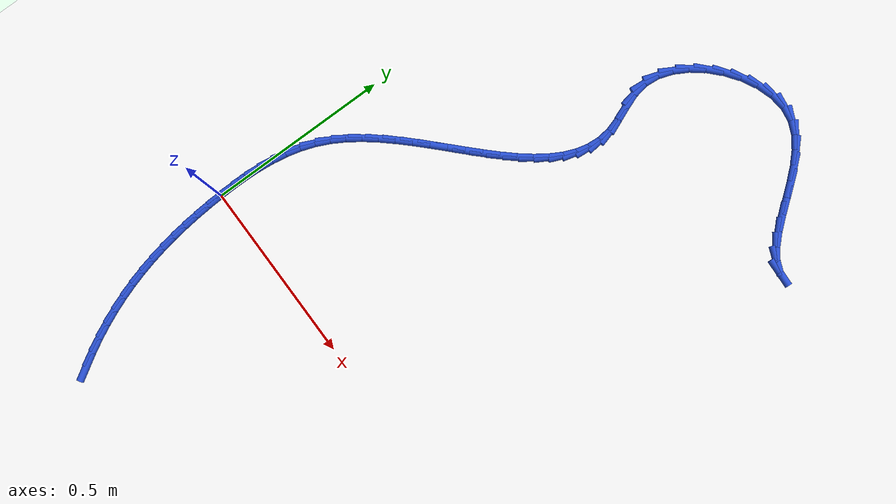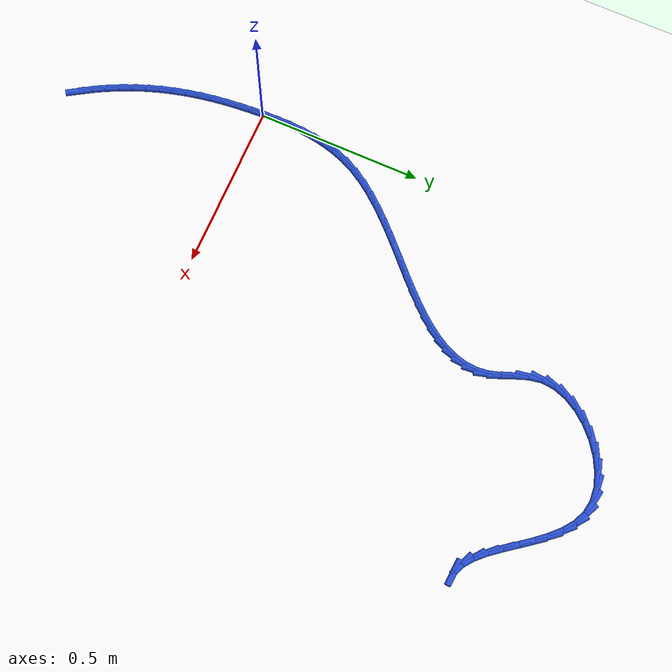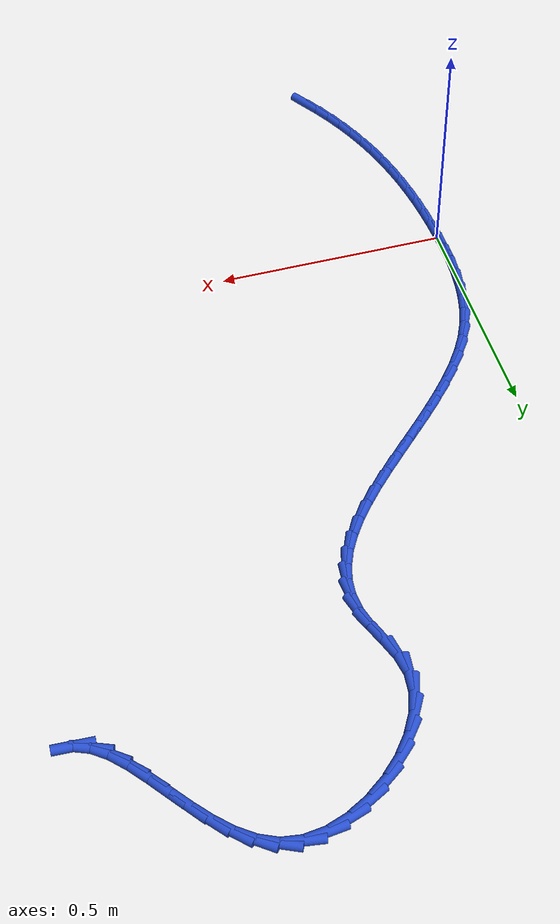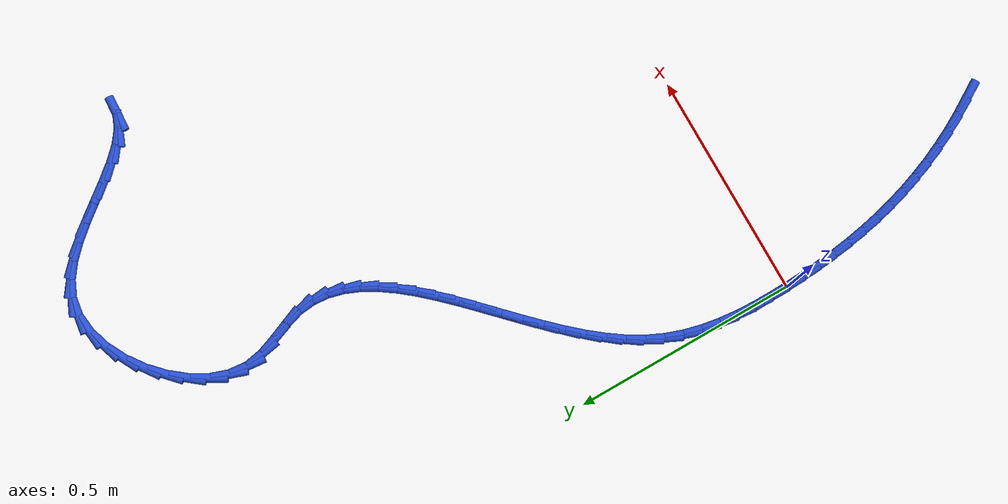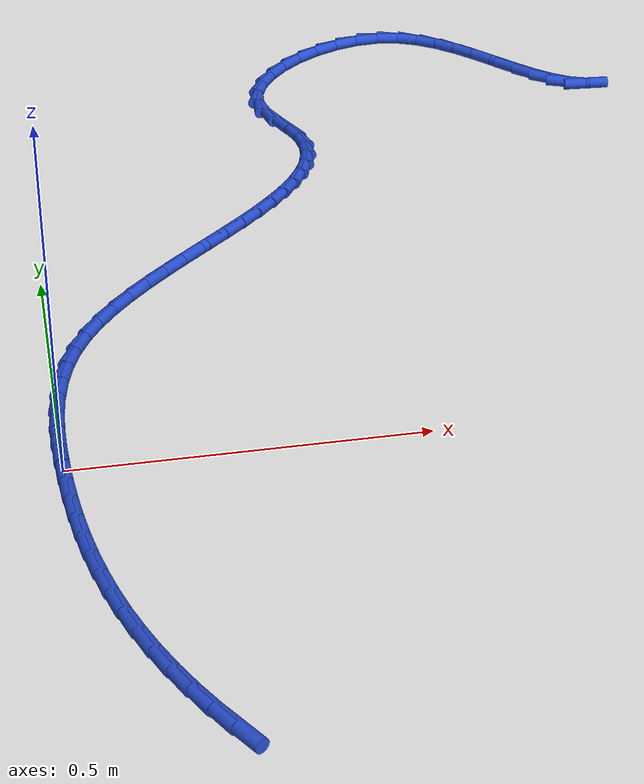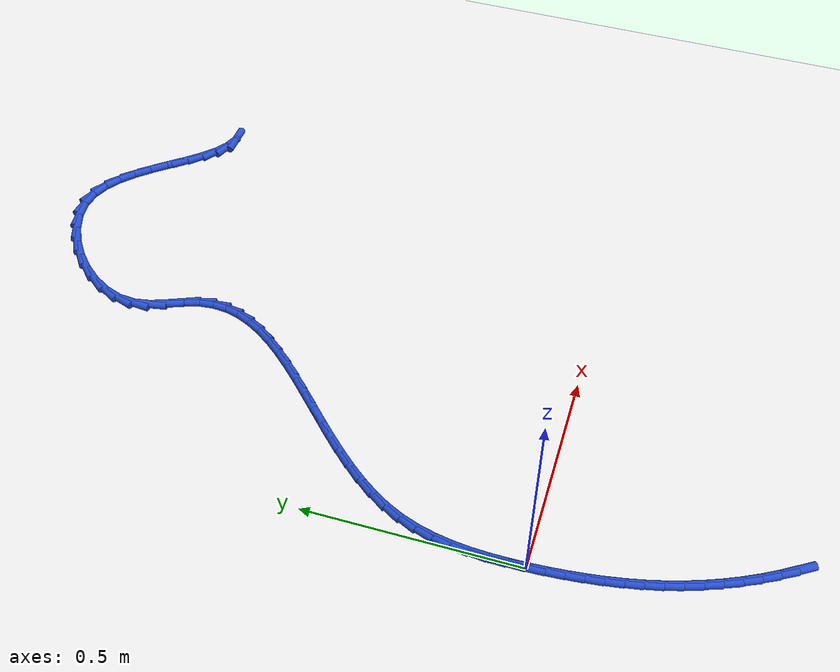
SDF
<sdf version="1.6">
 <world name="default">
  <model name="ground_plane">
   <static>1</static>
   <link name="link">
    <collision name="collision">
     <geometry><plane><normal>0 0 1</normal><size>100 100</size></plane></geometry>
     <surface><friction><ode><mu>100</mu><mu2>50</mu2></ode></friction></surface>
    </collision>
    <visual name="visual">
     <cast_shadows>0</cast_shadows>
     <geometry><plane><normal>0 0 1</normal><size>100 100</size></plane></geometry>
     <material>
      <script><uri>file://media/materials/scripts/gazebo.material</uri><name>Gazebo/WhiteGlow</name></script>
     </material>
    </visual>
   </link>
  </model>
  <model name="line">
   <link name="link_0">
    <pose>5.421010862427522e-18 -2.0816681711721685e-17 0.01 0 1.57 -1.5428339865353886</pose>
    <collision name="collision">
     <geometry><cylinder><radius>0.01</radius><length>0.08</length></cylinder></geometry>
    </collision>
    <visual name="visual">
     <material>
      <script><name>Gazebo/Blue</name><uri>file://media/materials/scripts/gazebo.material</uri></script>
     </material>
     <geometry><cylinder><radius>0.01</radius><length>0.08</length></cylinder></geometry>
    </visual>
   </link>
   <link name="link_1">
    <pose>-0.0011414737055418522 0.040811183048679804 0.01 0 1.57 1.565398914404202</pose>
    <collision name="collision">
     <geometry><cylinder><radius>0.01</radius><length>0.08</length></cylinder></geometry>
    </collision>
    <visual name="visual">
     <material>
      <script><name>Gazebo/Blue</name><uri>file://media/materials/scripts/gazebo.material</uri></script>
     </material>
     <geometry><cylinder><radius>0.01</radius><length>0.08</length></cylinder></geometry>
    </visual>
   </link>
   <link name="link_2">
    <pose>-0.0009211176221651361 0.08163703210619166 0.01 0 1.57 1.5211755405178442</pose>
    <collision name="collision">
     <geometry><cylinder><radius>0.01</radius><length>0.08</length></cylinder></geometry>
    </collision>
    <visual name="visual">
     <material>
      <script><name>Gazebo/Blue</name><uri>file://media/materials/scripts/gazebo.material</uri></script>
     </material>
     <geometry><cylinder><radius>0.01</radius><length>0.08</length></cylinder></geometry>
    </visual>
   </link>
   <link name="link_3">
    <pose>0.0010990882258941938 0.12231650661455905 0.01 0 1.57 1.465713972385653</pose>
    <collision name="collision">
     <geometry><cylinder><radius>0.01</radius><length>0.08</length></cylinder></geometry>
    </collision>
    <visual name="visual">
     <material>
      <script><name>Gazebo/Blue</name><uri>file://media/materials/scripts/gazebo.material</uri></script>
     </material>
     <geometry><cylinder><radius>0.01</radius><length>0.08</length></cylinder></geometry>
    </visual>
   </link>
   <link name="link_4">
    <pose>0.005357163814400184 0.1626885660158054 0.01 0 1.57 1.398746401001696</pose>
    <collision name="collision">
     <geometry><cylinder><radius>0.01</radius><length>0.08</length></cylinder></geometry>
    </collision>
    <visual name="visual">
     <material>
      <script><name>Gazebo/Blue</name><uri>file://media/materials/scripts/gazebo.material</uri></script>
     </material>
     <geometry><cylinder><radius>0.01</radius><length>0.08</length></cylinder></geometry>
    </visual>
   </link>
   <link name="link_5">
    <pose>0.012291129119116874 0.20259216975195415 0.01 0 1.57 1.3203290934087182</pose>
    <collision name="collision">
     <geometry><cylinder><radius>0.01</radius><length>0.08</length></cylinder></geometry>
    </collision>
    <visual name="visual">
     <material>
      <script><name>Gazebo/Blue</name><uri>file://media/materials/scripts/gazebo.material</uri></script>
     </material>
     <geometry><cylinder><radius>0.01</radius><length>0.08</length></cylinder></geometry>
    </visual>
   </link>
   <link name="link_6">
    <pose>0.022339004115808296 0.24186627726502868 0.01 0 1.57 1.2311024524189376</pose>
    <collision name="collision">
     <geometry><cylinder><radius>0.01</radius><length>0.08</length></cylinder></geometry>
    </collision>
    <visual name="visual">
     <material>
      <script><name>Gazebo/Blue</name><uri>file://media/materials/scripts/gazebo.material</uri></script>
     </material>
     <geometry><cylinder><radius>0.01</radius><length>0.08</length></cylinder></geometry>
    </visual>
   </link>
   <link name="link_7">
    <pose>0.03593880878023852 0.28034984799705265 0.01 0 1.57 1.1325924355763268</pose>
    <collision name="collision">
     <geometry><cylinder><radius>0.01</radius><length>0.08</length></cylinder></geometry>
    </collision>
    <visual name="visual">
     <material>
      <script><name>Gazebo/Blue</name><uri>file://media/materials/scripts/gazebo.material</uri></script>
     </material>
     <geometry><cylinder><radius>0.01</radius><length>0.08</length></cylinder></geometry>
    </visual>
   </link>
   <link name="link_8">
    <pose>0.05352614476346979 0.31788245410216465 0.01 0 1.57 1.0348267820632442</pose>
    <collision name="collision">
     <geometry><cylinder><radius>0.01</radius><length>0.08</length></cylinder></geometry>
    </collision>
    <visual name="visual">
     <material>
      <script><name>Gazebo/Blue</name><uri>file://media/materials/scripts/gazebo.material</uri></script>
     </material>
     <geometry><cylinder><radius>0.01</radius><length>0.08</length></cylinder></geometry>
    </visual>
   </link>
   <link name="link_9">
    <pose>0.07520842756066638 0.35438681770757396 0.01 0 1.57 0.953844433200665</pose>
    <collision name="collision">
     <geometry><cylinder><radius>0.01</radius><length>0.08</length></cylinder></geometry>
    </collision>
    <visual name="visual">
     <material>
      <script><name>Gazebo/Blue</name><uri>file://media/materials/scripts/gazebo.material</uri></script>
     </material>
     <geometry><cylinder><radius>0.01</radius><length>0.08</length></cylinder></geometry>
    </visual>
   </link>
   <link name="link_10">
    <pose>0.1004355990052654 0.38995223992709344 0.01 0 1.57 0.8898535858384609</pose>
    <collision name="collision">
     <geometry><cylinder><radius>0.01</radius><length>0.08</length></cylinder></geometry>
    </collision>
    <visual name="visual">
     <material>
      <script><name>Gazebo/Blue</name><uri>file://media/materials/scripts/gazebo.material</uri></script>
     </material>
     <geometry><cylinder><radius>0.01</radius><length>0.08</length></cylinder></geometry>
    </visual>
   </link>
   <link name="link_11">
    <pose>0.12857918034324045 0.4246878906886786 0.01 0 1.57 0.8409457394628888</pose>
    <collision name="collision">
     <geometry><cylinder><radius>0.01</radius><length>0.08</length></cylinder></geometry>
    </collision>
    <visual name="visual">
     <material>
      <script><name>Gazebo/Blue</name><uri>file://media/materials/scripts/gazebo.material</uri></script>
     </material>
     <geometry><cylinder><radius>0.01</radius><length>0.08</length></cylinder></geometry>
    </visual>
   </link>
   <link name="link_12">
    <pose>0.15901069282056537 0.45870293992028516 0.01 0 1.57 0.8054376384249018</pose>
    <collision name="collision">
     <geometry><cylinder><radius>0.01</radius><length>0.08</length></cylinder></geometry>
    </collision>
    <visual name="visual">
     <material>
      <script><name>Gazebo/Blue</name><uri>file://media/materials/scripts/gazebo.material</uri></script>
     </material>
     <geometry><cylinder><radius>0.01</radius><length>0.08</length></cylinder></geometry>
    </visual>
   </link>
   <link name="link_13">
    <pose>0.19110165768321397 0.4921065575498688 0.01 0 1.57 0.7820571953414078</pose>
    <collision name="collision">
     <geometry><cylinder><radius>0.01</radius><length>0.08</length></cylinder></geometry>
    </collision>
    <visual name="visual">
     <material>
      <script><name>Gazebo/Blue</name><uri>file://media/materials/scripts/gazebo.material</uri></script>
     </material>
     <geometry><cylinder><radius>0.01</radius><length>0.08</length></cylinder></geometry>
    </visual>
   </link>
   <link name="link_14">
    <pose>0.22422359617715992 0.5250079135053849 0.01 0 1.57 0.7700104994845323</pose>
    <collision name="collision">
     <geometry><cylinder><radius>0.01</radius><length>0.08</length></cylinder></geometry>
    </collision>
    <visual name="visual">
     <material>
      <script><name>Gazebo/Blue</name><uri>file://media/materials/scripts/gazebo.material</uri></script>
     </material>
     <geometry><cylinder><radius>0.01</radius><length>0.08</length></cylinder></geometry>
    </visual>
   </link>
   <link name="link_15">
    <pose>0.25774802954837694 0.5575161777147893 0.01 0 1.57 0.769006754024356</pose>
    <collision name="collision">
     <geometry><cylinder><radius>0.01</radius><length>0.08</length></cylinder></geometry>
    </collision>
    <visual name="visual">
     <material>
      <script><name>Gazebo/Blue</name><uri>file://media/materials/scripts/gazebo.material</uri></script>
     </material>
     <geometry><cylinder><radius>0.01</radius><length>0.08</length></cylinder></geometry>
    </visual>
   </link>
   <link name="link_16">
    <pose>0.29104647904283876 0.5897405201060375 0.01 0 1.57 0.7792829584035748</pose>
    <collision name="collision">
     <geometry><cylinder><radius>0.01</radius><length>0.08</length></cylinder></geometry>
    </collision>
    <visual name="visual">
     <material>
      <script><name>Gazebo/Blue</name><uri>file://media/materials/scripts/gazebo.material</uri></script>
     </material>
     <geometry><cylinder><radius>0.01</radius><length>0.08</length></cylinder></geometry>
    </visual>
   </link>
   <link name="link_17">
    <pose>0.3234904659065193 0.6217901106070853 0.01 0 1.57 0.8016484157715186</pose>
    <collision name="collision">
     <geometry><cylinder><radius>0.01</radius><length>0.08</length></cylinder></geometry>
    </collision>
    <visual name="visual">
     <material>
      <script><name>Gazebo/Blue</name><uri>file://media/materials/scripts/gazebo.material</uri></script>
     </material>
     <geometry><cylinder><radius>0.01</radius><length>0.08</length></cylinder></geometry>
    </visual>
   </link>
   <link name="link_18">
    <pose>0.35445151138539205 0.6537741191458879 0.01 0 1.57 0.8375537802983192</pose>
    <collision name="collision">
     <geometry><cylinder><radius>0.01</radius><length>0.08</length></cylinder></geometry>
    </collision>
    <visual name="visual">
     <material>
      <script><name>Gazebo/Blue</name><uri>file://media/materials/scripts/gazebo.material</uri></script>
     </material>
     <geometry><cylinder><radius>0.01</radius><length>0.08</length></cylinder></geometry>
    </visual>
   </link>
   <link name="link_19">
    <pose>0.3833011367254309 0.685801715650401 0.01 0 1.57 0.8891691966846835</pose>
    <collision name="collision">
     <geometry><cylinder><radius>0.01</radius><length>0.08</length></cylinder></geometry>
    </collision>
    <visual name="visual">
     <material>
      <script><name>Gazebo/Blue</name><uri>file://media/materials/scripts/gazebo.material</uri></script>
     </material>
     <geometry><cylinder><radius>0.01</radius><length>0.08</length></cylinder></geometry>
    </visual>
   </link>
   <link name="link_20">
    <pose>0.4094108631726099 0.7179820700485811 0.01 0 1.57 0.9594138190496606</pose>
    <collision name="collision">
     <geometry><cylinder><radius>0.01</radius><length>0.08</length></cylinder></geometry>
    </collision>
    <visual name="visual">
     <material>
      <script><name>Gazebo/Blue</name><uri>file://media/materials/scripts/gazebo.material</uri></script>
     </material>
     <geometry><cylinder><radius>0.01</radius><length>0.08</length></cylinder></geometry>
    </visual>
   </link>
   <link name="link_21">
    <pose>0.4321522119729021 0.7504243522683824 0.01 0 1.57 1.051788305752772</pose>
    <collision name="collision">
     <geometry><cylinder><radius>0.01</radius><length>0.08</length></cylinder></geometry>
    </collision>
    <visual name="visual">
     <material>
      <script><name>Gazebo/Blue</name><uri>file://media/materials/scripts/gazebo.material</uri></script>
     </material>
     <geometry><cylinder><radius>0.01</radius><length>0.08</length></cylinder></geometry>
    </visual>
   </link>
   <link name="link_22">
    <pose>0.4508967043722817 0.7832377322377613 0.01 0 1.57 1.1697055127524718</pose>
    <collision name="collision">
     <geometry><cylinder><radius>0.01</radius><length>0.08</length></cylinder></geometry>
    </collision>
    <visual name="visual">
     <material>
      <script><name>Gazebo/Blue</name><uri>file://media/materials/scripts/gazebo.material</uri></script>
     </material>
     <geometry><cylinder><radius>0.01</radius><length>0.08</length></cylinder></geometry>
    </visual>
   </link>
   <link name="link_23">
    <pose>0.4650158616167225 0.8165313798846735 0.01 0 1.57 1.3148879507058695</pose>
    <collision name="collision">
     <geometry><cylinder><radius>0.01</radius><length>0.08</length></cylinder></geometry>
    </collision>
    <visual name="visual">
     <material>
      <script><name>Gazebo/Blue</name><uri>file://media/materials/scripts/gazebo.material</uri></script>
     </material>
     <geometry><cylinder><radius>0.01</radius><length>0.08</length></cylinder></geometry>
    </visual>
   </link>
   <link name="link_24">
    <pose>0.47388120495219804 0.850414465137074 0.01 0 1.57 1.4847483524341716</pose>
    <collision name="collision">
     <geometry><cylinder><radius>0.01</radius><length>0.08</length></cylinder></geometry>
    </collision>
    <visual name="visual">
     <material>
      <script><name>Gazebo/Blue</name><uri>file://media/materials/scripts/gazebo.material</uri></script>
     </material>
     <geometry><cylinder><radius>0.01</radius><length>0.08</length></cylinder></geometry>
    </visual>
   </link>
   <link name="link_25">
    <pose>0.47686425562468227 0.8849961579229191 0.01 0 1.57 -1.4714417642738244</pose>
    <collision name="collision">
     <geometry><cylinder><radius>0.01</radius><length>0.08</length></cylinder></geometry>
    </collision>
    <visual name="visual">
     <material>
      <script><name>Gazebo/Blue</name><uri>file://media/materials/scripts/gazebo.material</uri></script>
     </material>
     <geometry><cylinder><radius>0.01</radius><length>0.08</length></cylinder></geometry>
    </visual>
   </link>
   <link name="link_26">
    <pose>0.4733365348801487 0.920385628170164 0.01 0 1.57 -1.287138561494419</pose>
    <collision name="collision">
     <geometry><cylinder><radius>0.01</radius><length>0.08</length></cylinder></geometry>
    </collision>
    <visual name="visual">
     <material>
      <script><name>Gazebo/Blue</name><uri>file://media/materials/scripts/gazebo.material</uri></script>
     </material>
     <geometry><cylinder><radius>0.01</radius><length>0.08</length></cylinder></geometry>
    </visual>
   </link>
   <link name="link_27">
    <pose>0.46275240512069327 0.9566924883215487 0.01 0 1.57 -1.181320694218776</pose>
    <collision name="collision">
     <geometry><cylinder><radius>0.01</radius><length>0.08</length></cylinder></geometry>
    </collision>
    <visual name="visual">
     <material>
      <script><name>Gazebo/Blue</name><uri>file://media/materials/scripts/gazebo.material</uri></script>
     </material>
     <geometry><cylinder><radius>0.01</radius><length>0.08</length></cylinder></geometry>
    </visual>
   </link>
   <link name="link_28">
    <pose>0.44742275411991567 0.9940416095965813 0.01 0 1.57 -1.2165671565249727</pose>
    <collision name="collision">
     <geometry><cylinder><radius>0.01</radius><length>0.08</length></cylinder></geometry>
    </collision>
    <visual name="visual">
     <material>
      <script><name>Gazebo/Blue</name><uri>file://media/materials/scripts/gazebo.material</uri></script>
     </material>
     <geometry><cylinder><radius>0.01</radius><length>0.08</length></cylinder></geometry>
    </visual>
   </link>
   <link name="link_29">
    <pose>0.43317140119592945 1.0325766283336713 0.01 0 1.57 -1.3935668420942937</pose>
    <collision name="collision">
     <geometry><cylinder><radius>0.01</radius><length>0.08</length></cylinder></geometry>
    </collision>
    <visual name="visual">
     <material>
      <script><name>Gazebo/Blue</name><uri>file://media/materials/scripts/gazebo.material</uri></script>
     </material>
     <geometry><cylinder><radius>0.01</radius><length>0.08</length></cylinder></geometry>
    </visual>
   </link>
   <link name="link_30">
    <pose>0.42603133349606975 1.0724410645441176 0.01 0 1.57 1.4740837462692427</pose>
    <collision name="collision">
     <geometry><cylinder><radius>0.01</radius><length>0.08</length></cylinder></geometry>
    </collision>
    <visual name="visual">
     <material>
      <script><name>Gazebo/Blue</name><uri>file://media/materials/scripts/gazebo.material</uri></script>
     </material>
     <geometry><cylinder><radius>0.01</radius><length>0.08</length></cylinder></geometry>
    </visual>
   </link>
   <link name="link_31">
    <pose>0.4300044510954093 1.1133946050493109 0.01 0 1.57 1.2361715861931493</pose>
    <collision name="collision">
     <geometry><cylinder><radius>0.01</radius><length>0.08</length></cylinder></geometry>
    </collision>
    <visual name="visual">
     <material>
      <script><name>Gazebo/Blue</name><uri>file://media/materials/scripts/gazebo.material</uri></script>
     </material>
     <geometry><cylinder><radius>0.01</radius><length>0.08</length></cylinder></geometry>
    </visual>
   </link>
   <link name="link_32">
    <pose>0.4442188941877277 1.1542758974756078 0.01 0 1.57 1.0461454764134763</pose>
    <collision name="collision">
     <geometry><cylinder><radius>0.01</radius><length>0.08</length></cylinder></geometry>
    </collision>
    <visual name="visual">
     <material>
      <script><name>Gazebo/Blue</name><uri>file://media/materials/scripts/gazebo.material</uri></script>
     </material>
     <geometry><cylinder><radius>0.01</radius><length>0.08</length></cylinder></geometry>
    </visual>
   </link>
   <link name="link_33">
    <pose>0.4670868439036568 1.193788288085476 0.01 0 1.57 0.8885519668398391</pose>
    <collision name="collision">
     <geometry><cylinder><radius>0.01</radius><length>0.08</length></cylinder></geometry>
    </collision>
    <visual name="visual">
     <material>
      <script><name>Gazebo/Blue</name><uri>file://media/materials/scripts/gazebo.material</uri></script>
     </material>
     <geometry><cylinder><radius>0.01</radius><length>0.08</length></cylinder></geometry>
    </visual>
   </link>
   <link name="link_34">
    <pose>0.49702048137382837 1.2306351231413855 0.01 0 1.57 0.7484161495095302</pose>
    <collision name="collision">
     <geometry><cylinder><radius>0.01</radius><length>0.08</length></cylinder></geometry>
    </collision>
    <visual name="visual">
     <material>
      <script><name>Gazebo/Blue</name><uri>file://media/materials/scripts/gazebo.material</uri></script>
     </material>
     <geometry><cylinder><radius>0.01</radius><length>0.08</length></cylinder></geometry>
    </visual>
   </link>
   <link name="link_35">
    <pose>0.5324319877288745 1.2635197489058037 0.01 0 1.57 0.6126815225585893</pose>
    <collision name="collision">
     <geometry><cylinder><radius>0.01</radius><length>0.08</length></cylinder></geometry>
    </collision>
    <visual name="visual">
     <material>
      <script><name>Gazebo/Blue</name><uri>file://media/materials/scripts/gazebo.material</uri></script>
     </material>
     <geometry><cylinder><radius>0.01</radius><length>0.08</length></cylinder></geometry>
    </visual>
   </link>
   <link name="link_36">
    <pose>0.5717335440994264 1.2911455116411998 0.01 0 1.57 0.4687944338650248</pose>
    <collision name="collision">
     <geometry><cylinder><radius>0.01</radius><length>0.08</length></cylinder></geometry>
    </collision>
    <visual name="visual">
     <material>
      <script><name>Gazebo/Blue</name><uri>file://media/materials/scripts/gazebo.material</uri></script>
     </material>
     <geometry><cylinder><radius>0.01</radius><length>0.08</length></cylinder></geometry>
    </visual>
   </link>
   <link name="link_37">
    <pose>0.6133373316161166 1.3122157576100422 0.01 0 1.57 0.30274790113291394</pose>
    <collision name="collision">
     <geometry><cylinder><radius>0.01</radius><length>0.08</length></cylinder></geometry>
    </collision>
    <visual name="visual">
     <material>
      <script><name>Gazebo/Blue</name><uri>file://media/materials/scripts/gazebo.material</uri></script>
     </material>
     <geometry><cylinder><radius>0.01</radius><length>0.08</length></cylinder></geometry>
    </visual>
   </link>
   <link name="link_38">
    <pose>0.6556555314095769 1.3254338330748 0.01 0 1.57 0.09787116318990208</pose>
    <collision name="collision">
     <geometry><cylinder><radius>0.01</radius><length>0.08</length></cylinder></geometry>
    </collision>
    <visual name="visual">
     <material>
      <script><name>Gazebo/Blue</name><uri>file://media/materials/scripts/gazebo.material</uri></script>
     </material>
     <geometry><cylinder><radius>0.01</radius><length>0.08</length></cylinder></geometry>
    </visual>
   </link>
   <link name="link_39">
    <pose>0.6971003246104387 1.329503084297941 0.01 0 1.57 -0.16102958598154918</pose>
    <collision name="collision">
     <geometry><cylinder><radius>0.01</radius><length>0.08</length></cylinder></geometry>
    </collision>
    <visual name="visual">
     <material>
      <script><name>Gazebo/Blue</name><uri>file://media/materials/scripts/gazebo.material</uri></script>
     </material>
     <geometry><cylinder><radius>0.01</radius><length>0.08</length></cylinder></geometry>
    </visual>
   </link>
   <link name="link_40">
    <pose>0.7361080149091528 1.3231668296931003 0.01 0 1.57 -0.43189429138741975</pose>
    <collision name="collision">
     <geometry><cylinder><radius>0.01</radius><length>0.08</length></cylinder></geometry>
    </collision>
    <visual name="visual">
     <material>
      <script><name>Gazebo/Blue</name><uri>file://media/materials/scripts/gazebo.material</uri></script>
     </material>
     <geometry><cylinder><radius>0.01</radius><length>0.08</length></cylinder></geometry>
    </visual>
   </link>
   <link name="link_41">
    <pose>0.7719946273835748 1.3066261250179432 0.01 0 1.57 -0.6398349906789519</pose>
    <collision name="collision">
     <geometry><cylinder><radius>0.01</radius><length>0.08</length></cylinder></geometry>
    </collision>
    <visual name="visual">
     <material>
      <script><name>Gazebo/Blue</name><uri>file://media/materials/scripts/gazebo.material</uri></script>
     </material>
     <geometry><cylinder><radius>0.01</radius><length>0.08</length></cylinder></geometry>
    </visual>
   </link>
   <link name="link_42">
    <pose>0.8051864873626604 1.2819218427747143 0.01 0 1.57 -0.7807768083004512</pose>
    <collision name="collision">
     <geometry><cylinder><radius>0.01</radius><length>0.08</length></cylinder></geometry>
    </collision>
    <visual name="visual">
     <material>
      <script><name>Gazebo/Blue</name><uri>file://media/materials/scripts/gazebo.material</uri></script>
     </material>
     <geometry><cylinder><radius>0.01</radius><length>0.08</length></cylinder></geometry>
    </visual>
   </link>
   <link name="link_43">
    <pose>0.8361809432612242 1.2512125438679522 0.01 0 1.57 -0.8676140089708787</pose>
    <collision name="collision">
     <geometry><cylinder><radius>0.01</radius><length>0.08</length></cylinder></geometry>
    </collision>
    <visual name="visual">
     <material>
      <script><name>Gazebo/Blue</name><uri>file://media/materials/scripts/gazebo.material</uri></script>
     </material>
     <geometry><cylinder><radius>0.01</radius><length>0.08</length></cylinder></geometry>
    </visual>
   </link>
   <link name="link_44">
    <pose>0.865475343494082 1.2166567892021953 0.01 0 1.57 -0.9114368812657686</pose>
    <collision name="collision">
     <geometry><cylinder><radius>0.01</radius><length>0.08</length></cylinder></geometry>
    </collision>
    <visual name="visual">
     <material>
      <script><name>Gazebo/Blue</name><uri>file://media/materials/scripts/gazebo.material</uri></script>
     </material>
     <geometry><cylinder><radius>0.01</radius><length>0.08</length></cylinder></geometry>
    </visual>
   </link>
   <link name="link_45">
    <pose>0.8935670364760493 1.1804131396819828 0.01 0 1.57 -0.9174115135770619</pose>
    <collision name="collision">
     <geometry><cylinder><radius>0.01</radius><length>0.08</length></cylinder></geometry>
    </collision>
    <visual name="visual">
     <material>
      <script><name>Gazebo/Blue</name><uri>file://media/materials/scripts/gazebo.material</uri></script>
     </material>
     <geometry><cylinder><radius>0.01</radius><length>0.08</length></cylinder></geometry>
    </visual>
   </link>
   <link name="link_46">
    <pose>0.9209533706219416 1.1446401562118524 0.01 0 1.57 -0.883970678081547</pose>
    <collision name="collision">
     <geometry><cylinder><radius>0.01</radius><length>0.08</length></cylinder></geometry>
    </collision>
    <visual name="visual">
     <material>
      <script><name>Gazebo/Blue</name><uri>file://media/materials/scripts/gazebo.material</uri></script>
     </material>
     <geometry><cylinder><radius>0.01</radius><length>0.08</length></cylinder></geometry>
    </visual>
   </link>
   <link name="link_47">
    <pose>0.9481316943465741 1.1114963996963434 0.01 0 1.57 -0.8013095608818674</pose>
    <collision name="collision">
     <geometry><cylinder><radius>0.01</radius><length>0.08</length></cylinder></geometry>
    </collision>
    <visual name="visual">
     <material>
      <script><name>Gazebo/Blue</name><uri>file://media/materials/scripts/gazebo.material</uri></script>
     </material>
     <geometry><cylinder><radius>0.01</radius><length>0.08</length></cylinder></geometry>
    </visual>
   </link>
   <link name="link_48">
    <pose>0.9755993560647622 1.083140431039994 0.01 0 1.57 -0.6484401586271312</pose>
    <collision name="collision">
     <geometry><cylinder><radius>0.01</radius><length>0.08</length></cylinder></geometry>
    </collision>
    <visual name="visual">
     <material>
      <script><name>Gazebo/Blue</name><uri>file://media/materials/scripts/gazebo.material</uri></script>
     </material>
     <geometry><cylinder><radius>0.01</radius><length>0.08</length></cylinder></geometry>
    </visual>
   </link>
   <link name="link_49">
    <pose>1.0038537041913216 1.061730811147342 0.01 0 1.57 -0.394727970321053</pose>
    <collision name="collision">
     <geometry><cylinder><radius>0.01</radius><length>0.08</length></cylinder></geometry>
    </collision>
    <visual name="visual">
     <material>
      <script><name>Gazebo/Blue</name><uri>file://media/materials/scripts/gazebo.material</uri></script>
     </material>
     <geometry><cylinder><radius>0.01</radius><length>0.08</length></cylinder></geometry>
    </visual>
   </link>
   <link name="link_50">
    <pose>1.0333919495292925 1.0494253980280288 0.01 0 1.57 -0.059929105691222534</pose>
    <collision name="collision">
     <geometry><cylinder><radius>0.01</radius><length>0.08</length></cylinder></geometry>
    </collision>
    <visual name="visual">
     <material>
      <script><name>Gazebo/Blue</name><uri>file://media/materials/scripts/gazebo.material</uri></script>
     </material>
     <geometry><cylinder><radius>0.01</radius><length>0.08</length></cylinder></geometry>
    </visual>
   </link>
   <link name="link_186">
    <pose>0.15577577723535874 -0.5376623827187763 0.01 0 1.57 -1.017339679476487</pose>
    <collision name="collision">
     <geometry><cylinder><radius>0.01</radius><length>0.08</length></cylinder></geometry>
    </collision>
    <visual name="visual">
     <material>
      <script><name>Gazebo/Blue</name><uri>file://media/materials/scripts/gazebo.material</uri></script>
     </material>
     <geometry><cylinder><radius>0.01</radius><length>0.08</length></cylinder></geometry>
    </visual>
   </link>
   <link name="link_187">
    <pose>0.13451442218001514 -0.5032517309859709 0.01 0 1.57 -1.06268597582837</pose>
    <collision name="collision">
     <geometry><cylinder><radius>0.01</radius><length>0.08</length></cylinder></geometry>
    </collision>
    <visual name="visual">
     <material>
      <script><name>Gazebo/Blue</name><uri>file://media/materials/scripts/gazebo.material</uri></script>
     </material>
     <geometry><cylinder><radius>0.01</radius><length>0.08</length></cylinder></geometry>
    </visual>
   </link>
   <link name="link_188">
    <pose>0.11477644708409286 -0.4678079023345149 0.01 0 1.57 -1.1071589470498984</pose>
    <collision name="collision">
     <geometry><cylinder><radius>0.01</radius><length>0.08</length></cylinder></geometry>
    </collision>
    <visual name="visual">
     <material>
      <script><name>Gazebo/Blue</name><uri>file://media/materials/scripts/gazebo.material</uri></script>
     </material>
     <geometry><cylinder><radius>0.01</radius><length>0.08</length></cylinder></geometry>
    </visual>
   </link>
   <link name="link_189">
    <pose>0.09660157616263365 -0.43145723089555865 0.01 0 1.57 -1.1510146676154134</pose>
    <collision name="collision">
     <geometry><cylinder><radius>0.01</radius><length>0.08</length></cylinder></geometry>
    </collision>
    <visual name="visual">
     <material>
      <script><name>Gazebo/Blue</name><uri>file://media/materials/scripts/gazebo.material</uri></script>
     </material>
     <geometry><cylinder><radius>0.01</radius><length>0.08</length></cylinder></geometry>
    </visual>
   </link>
   <link name="link_190">
    <pose>0.08002953363067922 -0.39432605080025224 0.01 0 1.57 -1.1945098502526206</pose>
    <collision name="collision">
     <geometry><cylinder><radius>0.01</radius><length>0.08</length></cylinder></geometry>
    </collision>
    <visual name="visual">
     <material>
      <script><name>Gazebo/Blue</name><uri>file://media/materials/scripts/gazebo.material</uri></script>
     </material>
     <geometry><cylinder><radius>0.01</radius><length>0.08</length></cylinder></geometry>
    </visual>
   </link>
   <link name="link_191">
    <pose>0.06510004370327128 -0.3565406961797462 0.01 0 1.57 -1.2379027747774494</pose>
    <collision name="collision">
     <geometry><cylinder><radius>0.01</radius><length>0.08</length></cylinder></geometry>
    </collision>
    <visual name="visual">
     <material>
      <script><name>Gazebo/Blue</name><uri>file://media/materials/scripts/gazebo.material</uri></script>
     </material>
     <geometry><cylinder><radius>0.01</radius><length>0.08</length></cylinder></geometry>
    </visual>
   </link>
   <link name="link_192">
    <pose>0.05185283059545182 -0.3182275011651917 0.01 0 1.57 -1.281256330909745</pose>
    <collision name="collision">
     <geometry><cylinder><radius>0.01</radius><length>0.08</length></cylinder></geometry>
    </collision>
    <visual name="visual">
     <material>
      <script><name>Gazebo/Blue</name><uri>file://media/materials/scripts/gazebo.material</uri></script>
     </material>
     <geometry><cylinder><radius>0.01</radius><length>0.08</length></cylinder></geometry>
    </visual>
   </link>
   <link name="link_193">
    <pose>0.0403170455977175 -0.27950536393907116 0.01 0 1.57 -1.323044386823631</pose>
    <collision name="collision">
     <geometry><cylinder><radius>0.01</radius><length>0.08</length></cylinder></geometry>
    </collision>
    <visual name="visual">
     <material>
      <script><name>Gazebo/Blue</name><uri>file://media/materials/scripts/gazebo.material</uri></script>
     </material>
     <geometry><cylinder><radius>0.01</radius><length>0.08</length></cylinder></geometry>
    </visual>
   </link>
   <link name="link_194">
    <pose>0.03043319721376342 -0.24043084012108026 0.01 0 1.57 -1.36231353868258</pose>
    <collision name="collision">
     <geometry><cylinder><radius>0.01</radius><length>0.08</length></cylinder></geometry>
    </collision>
    <visual name="visual">
     <material>
      <script><name>Gazebo/Blue</name><uri>file://media/materials/scripts/gazebo.material</uri></script>
     </material>
     <geometry><cylinder><radius>0.01</radius><length>0.08</length></cylinder></geometry>
    </visual>
   </link>
   <link name="link_195">
    <pose>0.022097546797714366 -0.20102936626528156 0.01 0 1.57 -1.3989328846937208</pose>
    <collision name="collision">
     <geometry><cylinder><radius>0.01</radius><length>0.08</length></cylinder></geometry>
    </collision>
    <visual name="visual">
     <material>
      <script><name>Gazebo/Blue</name><uri>file://media/materials/scripts/gazebo.material</uri></script>
     </material>
     <geometry><cylinder><radius>0.01</radius><length>0.08</length></cylinder></geometry>
    </visual>
   </link>
   <link name="link_196">
    <pose>0.015206029657111923 -0.1613261496168416 0.01 0 1.57 -1.4328220768289623</pose>
    <collision name="collision">
     <geometry><cylinder><radius>0.01</radius><length>0.08</length></cylinder></geometry>
    </collision>
    <visual name="visual">
     <material>
      <script><name>Gazebo/Blue</name><uri>file://media/materials/scripts/gazebo.material</uri></script>
     </material>
     <geometry><cylinder><radius>0.01</radius><length>0.08</length></cylinder></geometry>
    </visual>
   </link>
   <link name="link_197">
    <pose>0.009654581099497683 -0.12134639742092695 0.01 0 1.57 -1.4639384783020215</pose>
    <collision name="collision">
     <geometry><cylinder><radius>0.01</radius><length>0.08</length></cylinder></geometry>
    </collision>
    <visual name="visual">
     <material>
      <script><name>Gazebo/Blue</name><uri>file://media/materials/scripts/gazebo.material</uri></script>
     </material>
     <geometry><cylinder><radius>0.01</radius><length>0.08</length></cylinder></geometry>
    </visual>
   </link>
   <link name="link_198">
    <pose>0.005339136432413228 -0.08111531692270413 0.01 0 1.57 -1.4922699070874104</pose>
    <collision name="collision">
     <geometry><cylinder><radius>0.01</radius><length>0.08</length></cylinder></geometry>
    </collision>
    <visual name="visual">
     <material>
      <script><name>Gazebo/Blue</name><uri>file://media/materials/scripts/gazebo.material</uri></script>
     </material>
     <geometry><cylinder><radius>0.01</radius><length>0.08</length></cylinder></geometry>
    </visual>
   </link>
   <link name="link_199">
    <pose>0.00215563096340014 -0.04065811536733962 0.01 0 1.57 -1.5178274533558695</pose>
    <collision name="collision">
     <geometry><cylinder><radius>0.01</radius><length>0.08</length></cylinder></geometry>
    </collision>
    <visual name="visual">
     <material>
      <script><name>Gazebo/Blue</name><uri>file://media/materials/scripts/gazebo.material</uri></script>
     </material>
     <geometry><cylinder><radius>0.01</radius><length>0.08</length></cylinder></geometry>
    </visual>
   </link>
   <link name="link_200">
    <pose>3.686287386450715e-18 0.0 0.01 0 1.57 -1.5406387850446766</pose>
    <collision name="collision">
     <geometry><cylinder><radius>0.01</radius><length>0.08</length></cylinder></geometry>
    </collision>
    <visual name="visual">
     <material>
      <script><name>Gazebo/Blue</name><uri>file://media/materials/scripts/gazebo.material</uri></script>
     </material>
     <geometry><cylinder><radius>0.01</radius><length>0.08</length></cylinder></geometry>
    </visual>
   </link>
   <link name="link_201">
    <pose>-0.0012318211502456169 0.0408338219341491 0.01 0 1.57 -1.5406387850446766</pose>
    <collision name="collision">
     <geometry><cylinder><radius>0.01</radius><length>0.08</length></cylinder></geometry>
    </collision>
    <visual name="visual">
     <material>
      <script><name>Gazebo/Blue</name><uri>file://media/materials/scripts/gazebo.material</uri></script>
     </material>
     <geometry><cylinder><radius>0.01</radius><length>0.08</length></cylinder></geometry>
    </visual>
   </link>
  </model>
 </world>
</sdf>
